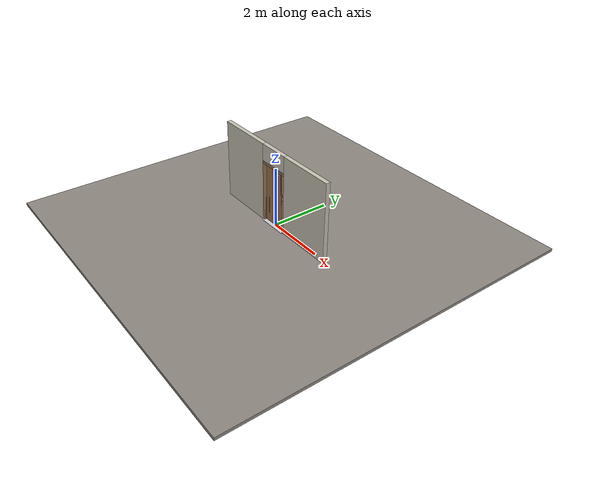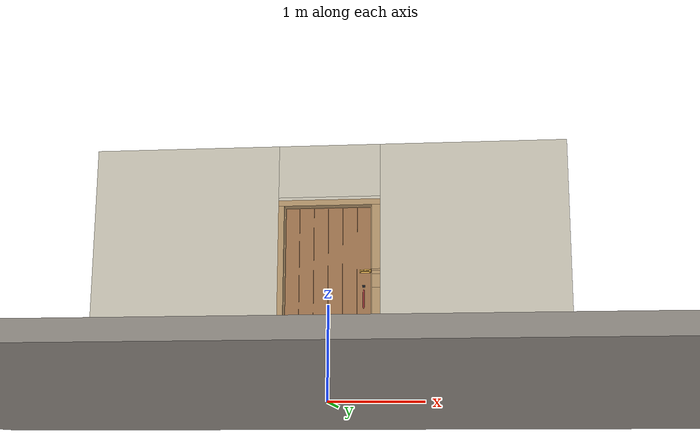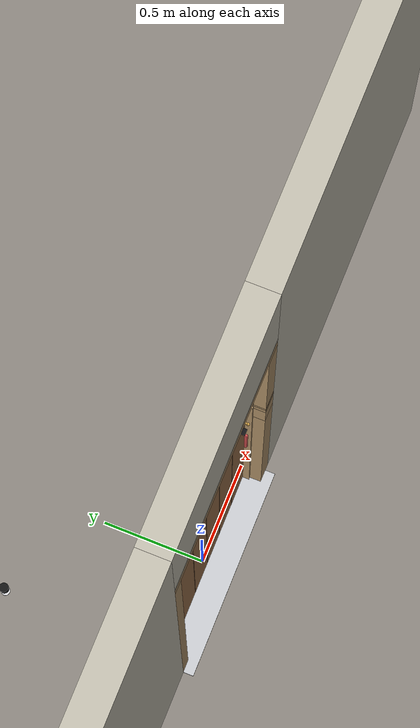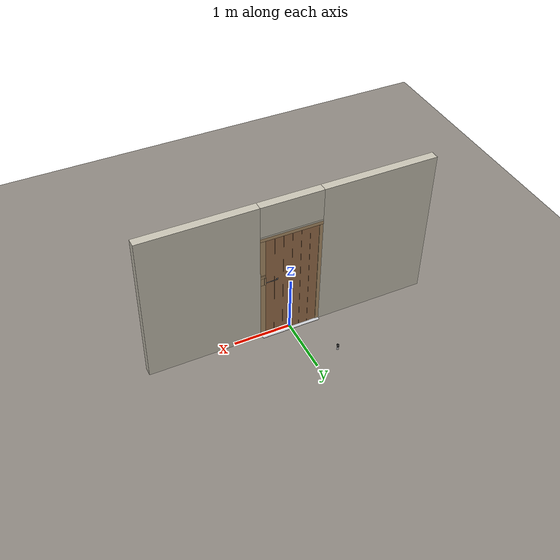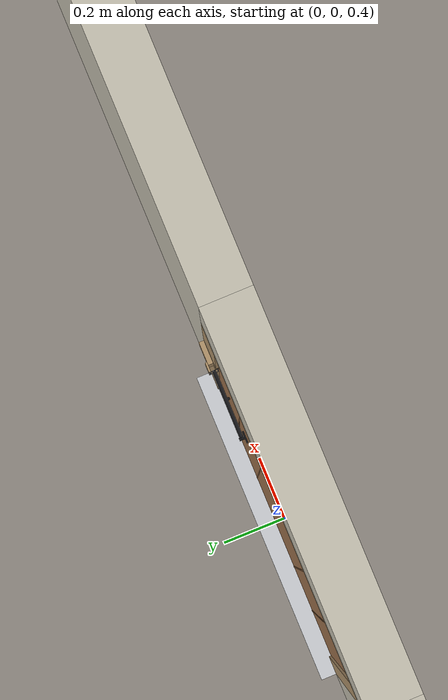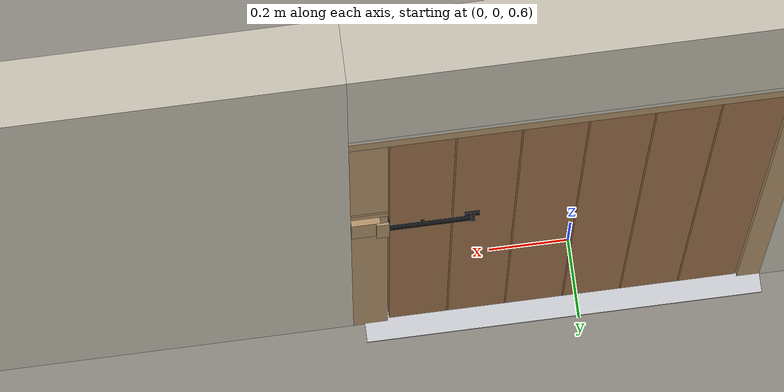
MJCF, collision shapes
<?xml version="1.0" ?>
<mujoco model="db0349_swing_single_full">
  <compiler angle="radian" meshdir="../../hardware" texturedir="../../textures" autolimits="true" inertiafromgeom="false"/>
  <option timestep="0.002" integrator="implicitfast" cone="elliptic" impratio="10" noslip_iterations="3">
    <flag multiccd="enable"/>
  </option>
  <size memory="16M"/>
  <default>
    <geom condim="4" solref="0.005 1" solimp="0.95 0.99 0.001"/>
    <joint solreflimit="0.005 1" solimplimit="0.95 0.99 0.001"/>
    <tendon solreflimit="0.005 1"/>
    <equality solref="0.002 1"/>
  </default>
  <visual>
    <headlight ambient="0.4 0.4 0.4" diffuse="0.7 0.7 0.7" specular="0.2 0.2 0.2"/>
    <quality shadowsize="4096"/>
    <map znear="0.01" zfar="60"/>
  </visual>
  <asset>
    <mesh name="hinge_18a63ca062" file="hinge_18a63ca062.obj"/>
    <mesh name="hinge_jamb_e6260b1afb" file="hinge_jamb_e6260b1afb.obj"/>
    <mesh name="thumb_latch_0073ea78ed" file="thumb_latch_0073ea78ed.obj"/>
    <material name="mat_floor" rgba="0.55 0.53 0.5 1" specular="0.2" shininess="0.15" reflectance="0"/>
    <material name="mat_wall" rgba="0.78 0.76 0.7 1" specular="0.2" shininess="0.1" reflectance="0"/>
    <material name="mat_leaf" rgba="0.62 0.45 0.3 1" specular="0.2" shininess="0.5" reflectance="0"/>
    <material name="mat_leaf_brace" rgba="0.558 0.405 0.27 1" specular="0.2" shininess="0.2" reflectance="0"/>
    <material name="mat_hinge" rgba="0.45 0.3 0.22 1" specular="0.5" shininess="0.1" reflectance="0.2"/>
    <material name="mat_op_wrought_iron" rgba="0.08 0.08 0.09 1" specular="0.56" shininess="0.25" reflectance="0.24"/>
    <material name="mat_op_brass" rgba="0.85 0.66 0.3 1" specular="0.8" shininess="0.75" reflectance="0.4"/>
    <material name="mat_frame" rgba="0.7 0.58 0.42 1" specular="0.2" shininess="0.5" reflectance="0"/>
    <material name="mat_threshold" rgba="0.8 0.81 0.83 1" specular="0.8" shininess="0.6" reflectance="0.4"/>
    <material name="mat_bumper_stop" rgba="0.08 0.08 0.08 1" specular="0.2" shininess="0.1" reflectance="0"/>
    <material name="mat_stop_base" rgba="0.9 0.9 0.92 1" specular="0.8" shininess="0.9" reflectance="0.4"/>
    <texture name="skybox" type="skybox" builtin="gradient" rgb1="0.6 0.7 0.85" rgb2="0.9 0.92 0.95" width="256" height="256"/>
  </asset>
  <worldbody>
    <light name="sun" pos="1.5 -2.5 4" dir="-0.3 0.5 -0.8" directional="true" diffuse="0.8 0.8 0.8" specular="0.3 0.3 0.3" castshadow="true"/>
    <light name="fill" pos="-1.5 2.5 3" dir="0.3 -0.5 -0.7" directional="true" diffuse="0.35 0.35 0.4" castshadow="false"/>
    <camera name="robot_view" pos="0 -2.582688 1.734312" xyaxes="1 0 0 0 0.26963 0.962964" fovy="52"/>
    <camera name="far_view" pos="0 2.501687 1.734312" xyaxes="-1 0 0 0 -0.26963 0.962964" fovy="52"/>
    <camera name="iso" pos="1.932062 -2.175938 2.141063" xyaxes="0.741536 0.670913 0 -0.242917 0.268487 0.932151" fovy="46"/>
    <camera name="detail_handle" pos="0.556 -0.86 1.33" xyaxes="0.97561 0.219512 0 -0.070934 0.315262 0.94635" fovy="38"/>
    <geom name="floor" type="box" size="6 6 0.05" pos="0 0 -0.05" material="mat_floor" group="0" contype="1" conaffinity="1" friction="0.8 0.005 0.0001" density="2400"/>
    <geom name="wall_left" type="box" size="0.9895 0.0725 1.35" pos="-1.5105 -0.0405 1.35" material="mat_wall" group="0" contype="1" conaffinity="1" friction="0.6 0.005 0.0001" density="800"/>
    <geom name="wall_right" type="box" size="0.9745 0.0725 1.35" pos="1.5255 -0.0405 1.35" material="mat_wall" group="0" contype="1" conaffinity="1" friction="0.6 0.005 0.0001" density="800"/>
    <geom name="wall_header" type="box" size="0.536 0.0725 0.2825" pos="0.015 -0.0405 2.4175" material="mat_wall" group="0" contype="1" conaffinity="1" friction="0.6 0.005 0.0001" density="800"/>
    <geom name="hinge_0_jamb" type="mesh" mesh="hinge_jamb_e6260b1afb" pos="-0.458 0.032 0.259" quat="0 1 0 0" material="mat_hinge" group="1" contype="0" conaffinity="0" density="7850"/>
    <geom name="hinge_1_jamb" type="mesh" mesh="hinge_jamb_e6260b1afb" pos="-0.458 0.032 1.025" quat="0 1 0 0" material="mat_hinge" group="1" contype="0" conaffinity="0" density="7850"/>
    <geom name="hinge_2_jamb" type="mesh" mesh="hinge_jamb_e6260b1afb" pos="-0.458 0.032 1.861" quat="0 1 0 0" material="mat_hinge" group="1" contype="0" conaffinity="0" density="7850"/>
    <geom name="leaf_latch_bar_keeper_b" type="box" size="0.015 0.0025 0.0005" pos="0.4605 0.037 1.1625" quat="-0.5 -0.5 0.5 0.5" material="mat_op_wrought_iron" group="1" contype="0" conaffinity="0" density="7800"/>
    <geom name="leaf_latch_bar_keeper_l" type="box" size="0.0025 0.07 0.0005" pos="0.4605 0.0495 1.235" quat="-0.5 -0.5 0.5 0.5" material="mat_op_wrought_iron" group="1" contype="0" conaffinity="0" density="7800"/>
    <geom name="leaf_latch_bar_keeper_t" type="box" size="0.015 0.0025 0.0005" pos="0.4605 0.037 1.3075" quat="-0.5 -0.5 0.5 0.5" material="mat_op_wrought_iron" group="1" contype="0" conaffinity="0" density="7800"/>
    <geom name="leaf_latch_bar_keeper_r" type="box" size="0.0025 0.07 0.0005" pos="0.4605 0.0245 1.235" quat="-0.5 -0.5 0.5 0.5" material="mat_op_wrought_iron" group="1" contype="0" conaffinity="0" density="7800"/>
    <geom name="leaf_aux_bolt_keeper_b" type="box" size="0.014 0.003 0.0005" pos="0.4605 -0.037 1.337" quat="-0.5 -0.5 0.5 0.5" material="mat_op_brass" group="1" contype="0" conaffinity="0" density="7800"/>
    <geom name="leaf_aux_bolt_keeper_l" type="box" size="0.003 0.01 0.0005" pos="0.4605 -0.026 1.35" quat="-0.5 -0.5 0.5 0.5" material="mat_op_brass" group="1" contype="0" conaffinity="0" density="7800"/>
    <geom name="leaf_aux_bolt_keeper_t" type="box" size="0.014 0.003 0.0005" pos="0.4605 -0.037 1.363" quat="-0.5 -0.5 0.5 0.5" material="mat_op_brass" group="1" contype="0" conaffinity="0" density="7800"/>
    <geom name="leaf_aux_bolt_keeper_r" type="box" size="0.003 0.01 0.0005" pos="0.4605 -0.048 1.35" quat="-0.5 -0.5 0.5 0.5" material="mat_op_brass" group="1" contype="0" conaffinity="0" density="7800"/>
    <geom name="jamb_hinge" type="box" size="0.03 0.0725 1.0225" pos="-0.491 -0.0405 1.0225" material="mat_frame" group="0" contype="1" conaffinity="1" friction="0.6 0.005 0.0001" density="750"/>
    <geom name="strike_1235_wall_n" type="box" size="0.045 0.07 0.07" pos="0.506 -0.043 1.235" material="mat_frame" group="0" contype="1" conaffinity="1" friction="0.6 0.005 0.0001" density="750"/>
    <geom name="strike_1235_wall_p" type="box" size="0.015 0.003 0.07" pos="0.476 0.05 1.235" material="mat_frame" group="0" contype="1" conaffinity="1" friction="0.6 0.005 0.0001" density="750"/>
    <geom name="strike_1235_back" type="box" size="0.035 0.01 0.07" pos="0.516 0.037 1.235" material="mat_frame" group="0" contype="1" conaffinity="1" friction="0.6 0.005 0.0001" density="750"/>
    <geom name="strike_1350_wall_n" type="box" size="0.045 0.034 0.01" pos="0.506 -0.079 1.35" material="mat_frame" group="0" contype="1" conaffinity="1" friction="0.6 0.005 0.0001" density="750"/>
    <geom name="strike_1350_wall_p" type="box" size="0.045 0.0305 0.01" pos="0.506 0.0015 1.35" material="mat_frame" group="0" contype="1" conaffinity="1" friction="0.6 0.005 0.0001" density="750"/>
    <geom name="strike_1350_back" type="box" size="0.024 0.008 0.01" pos="0.527 -0.037 1.35" material="mat_frame" group="0" contype="1" conaffinity="1" friction="0.6 0.005 0.0001" density="750"/>
    <geom name="jamb_strike_0" type="box" size="0.045 0.0725 0.5825" pos="0.506 -0.0405 0.5825" material="mat_frame" group="0" contype="1" conaffinity="1" friction="0.6 0.005 0.0001" density="750"/>
    <geom name="jamb_strike_1" type="box" size="0.045 0.0725 0.0175" pos="0.506 -0.0405 1.3225" material="mat_frame" group="0" contype="1" conaffinity="1" friction="0.6 0.005 0.0001" density="750"/>
    <geom name="jamb_strike_2" type="box" size="0.045 0.0725 0.3425" pos="0.506 -0.0405 1.7025" material="mat_frame" group="0" contype="1" conaffinity="1" friction="0.6 0.005 0.0001" density="750"/>
    <geom name="jamb_head" type="box" size="0.536 0.0725 0.03" pos="0.015 -0.0405 2.075" material="mat_frame" group="0" contype="1" conaffinity="1" friction="0.6 0.005 0.0001" density="750"/>
    <geom name="head_stud" type="box" size="0.536 0.0725 0.015" pos="0.015 -0.0405 2.12" material="mat_wall" group="0" contype="1" conaffinity="1" friction="0.6 0.005 0.0001" density="500"/>
    <geom name="stop_hinge" type="box" size="0.0055 0.016 1.0225" pos="-0.4555 -0.0415 1.0225" material="mat_frame" group="0" contype="1" conaffinity="1" friction="0.6 0.005 0.0001" density="750"/>
    <geom name="stop_strike" type="box" size="0.0055 0.016 0.664" pos="0.4555 -0.0415 0.664" material="mat_frame" group="0" contype="1" conaffinity="1" friction="0.6 0.005 0.0001" density="750"/>
    <geom name="stop_strike_1" type="box" size="0.0055 0.016 0.3365" pos="0.4555 -0.0415 1.7085" material="mat_frame" group="0" contype="1" conaffinity="1" friction="0.6 0.005 0.0001" density="750"/>
    <geom name="stop_head" type="box" size="0.461 0.016 0.0055" pos="0 -0.0415 2.0395" material="mat_frame" group="0" contype="1" conaffinity="1" friction="0.6 0.005 0.0001" density="750"/>
    <geom name="threshold" type="box" size="0.521 0.1225 0.004" pos="0 -0.0405 0.004" material="mat_threshold" group="0" contype="1" conaffinity="1" friction="0.6 0.005 0.0001" density="2700"/>
    <geom name="door_stop_base" type="cylinder" size="0.022 0.003" pos="-0.475 0.8089 0.003" material="mat_stop_base" group="0" contype="1" conaffinity="1" friction="0.6 0.005 0.0001" density="7850"/>
    <geom name="door_stop_post" type="cylinder" size="0.012 0.0245" pos="-0.475 0.8089 0.0305" material="mat_stop_base" group="0" contype="1" conaffinity="1" friction="0.6 0.005 0.0001" density="7850"/>
    <geom name="door_stop_bumper" type="cylinder" size="0.022 0.02" pos="-0.475 0.8089 0.075" material="mat_bumper_stop" group="0" contype="1" conaffinity="1" friction="0.6 0.005 0.0001" density="1100"/>
    <site name="approach_point" pos="0 -1.5 0" quat="1 0 0 0" size="0.05" rgba="0.2 0.9 0.2 0.5" group="4"/>
    <site name="goal_point" pos="0 1.5 0" quat="1 0 0 0" size="0.05" rgba="0.2 0.9 0.2 0.5" group="4"/>
    <site name="door_plane_center" pos="0 0 1.0225" quat="1 0 0 0" size="0.02" rgba="0.2 0.9 0.2 0.5" group="4"/>
    <body name="leaf" pos="-0.461 0 0">
      <inertial pos="0.46018 -0.000364 1.026305" mass="66.040744" quat="0.501334 0.499152 -0.500882 0.498627" diaginertia="4.787250534 22.49156911 27.247308361"/>
      <joint name="leaf_hinge" type="hinge" axis="0 0 1" pos="0.003 0.032 0" limited="true" range="0 1.570796" damping="0.30611" frictionloss="12.216597" armature="0.02"/>
      <geom name="leaf_slab" type="box" size="0.457 0.025 1.016" pos="0.46 0 1.025" material="mat_leaf" group="0" contype="1" conaffinity="1" friction="0.4 0.005 0.0001" density="1"/>
      <geom name="leaf_plank_gap_1" type="box" size="0.002 0.026 1.006" pos="0.155333 0 1.025" material="mat_leaf_brace" group="1" contype="0" conaffinity="0" density="1"/>
      <geom name="leaf_plank_gap_2" type="box" size="0.002 0.026 1.006" pos="0.307667 0 1.025" material="mat_leaf_brace" group="1" contype="0" conaffinity="0" density="1"/>
      <geom name="leaf_plank_gap_3" type="box" size="0.002 0.026 1.006" pos="0.46 0 1.025" material="mat_leaf_brace" group="1" contype="0" conaffinity="0" density="1"/>
      <geom name="leaf_plank_gap_4" type="box" size="0.002 0.026 1.006" pos="0.612333 0 1.025" material="mat_leaf_brace" group="1" contype="0" conaffinity="0" density="1"/>
      <geom name="leaf_plank_gap_5" type="box" size="0.002 0.026 1.006" pos="0.764667 0 1.025" material="mat_leaf_brace" group="1" contype="0" conaffinity="0" density="1"/>
      <geom name="hinge_0" type="mesh" mesh="hinge_18a63ca062" pos="0.003 0.032 0.259" quat="0 1 0 0" material="mat_hinge" group="1" contype="0" conaffinity="0" density="7850"/>
      <geom name="hinge_1" type="mesh" mesh="hinge_18a63ca062" pos="0.003 0.032 1.025" quat="0 1 0 0" material="mat_hinge" group="1" contype="0" conaffinity="0" density="7850"/>
      <geom name="hinge_2" type="mesh" mesh="hinge_18a63ca062" pos="0.003 0.032 1.861" quat="0 1 0 0" material="mat_hinge" group="1" contype="0" conaffinity="0" density="7850"/>
      <geom name="leaf_suffolk_grip" type="mesh" mesh="thumb_latch_0073ea78ed" pos="0.837 -0.025 1.05" quat="0.707107 0.707107 0 0" material="mat_op_wrought_iron" group="1" contype="0" conaffinity="0" density="7000"/>
      <geom name="leaf_suffolk_grip_col" type="capsule" size="0.008 0.09" pos="0.837 -0.06 1.05" material="mat_op_wrought_iron" group="3" contype="1" conaffinity="1" rgba="0.8 0.3 0.3 0.25" friction="0.7 0.01 0.0001" density="7000"/>
      <geom name="leaf_latch_bar_pivot" type="box" size="0.018 0.002 0.018" pos="0.717 0.027 1.19" material="mat_op_wrought_iron" group="1" contype="0" conaffinity="0" density="7000"/>
      <geom name="leaf_latch_bar_pin" type="cylinder" size="0.005 0.01" pos="0.717 0.035 1.19" quat="0.707107 -0.707107 0 0" material="mat_op_wrought_iron" group="1" contype="0" conaffinity="0" density="7000"/>
      <geom name="leaf_aux_bolt_plate" type="box" size="0.0595 0.019 0.001" pos="0.8495 -0.026 1.35" quat="0.707107 0.707107 0 0" material="mat_op_brass" group="1" contype="0" conaffinity="0" density="7800"/>
      <geom name="leaf_aux_bolt_guide_0_leg_n" type="box" size="0.006 0.002 0.0125" pos="0.901 -0.0375 1.339" quat="0.707107 0.707107 0 0" material="mat_op_brass" group="1" contype="0" conaffinity="0" density="7800"/>
      <geom name="leaf_aux_bolt_guide_0_leg_p" type="box" size="0.006 0.002 0.0125" pos="0.901 -0.0375 1.361" quat="0.707107 0.707107 0 0" material="mat_op_brass" group="1" contype="0" conaffinity="0" density="7800"/>
      <geom name="leaf_aux_bolt_guide_0_bridge" type="box" size="0.006 0.013 0.002" pos="0.901 -0.048 1.35" quat="0.707107 0.707107 0 0" material="mat_op_brass" group="1" contype="0" conaffinity="0" density="7800"/>
      <geom name="leaf_aux_bolt_guide_1_leg_n" type="box" size="0.006 0.002 0.0125" pos="0.8 -0.0375 1.339" quat="0.707107 0.707107 0 0" material="mat_op_brass" group="1" contype="0" conaffinity="0" density="7800"/>
      <geom name="leaf_aux_bolt_guide_1_leg_p" type="box" size="0.006 0.002 0.0125" pos="0.8 -0.0375 1.361" quat="0.707107 0.707107 0 0" material="mat_op_brass" group="1" contype="0" conaffinity="0" density="7800"/>
      <geom name="leaf_aux_bolt_guide_1_bridge" type="box" size="0.006 0.013 0.002" pos="0.8 -0.048 1.35" quat="0.707107 0.707107 0 0" material="mat_op_brass" group="1" contype="0" conaffinity="0" density="7800"/>
      <site name="leaf_grip_n" pos="0.837 -0.06 1.05" quat="1 0 0 0" size="0.012" rgba="0.2 0.9 0.2 0.5" group="4"/>
      <site name="leaf_edge_mid" pos="0.917 0 1.016" quat="1 0 0 0" size="0.02" rgba="0.2 0.9 0.2 0.5" group="4"/>
      <body name="leaf_thumb" pos="0.837 -0.025 1.195">
        <inertial pos="0 -0.00137 -0.006032" mass="0.131152" quat="0.700107 -0.09925 -0.09925 -0.700107" diaginertia="0.000010933 0.0000597 0.000061045"/>
        <joint name="leaf_thumb_hinge" type="hinge" axis="1 0 0" limited="true" range="0 0.3" damping="0.15542" frictionloss="0.032" stiffness="0.6" springref="-0.5" armature="0.01"/>
        <geom name="leaf_thumb_geom" type="box" size="0.015 0.014 0.003" pos="0 -0.02 0" material="mat_op_wrought_iron" group="0" contype="1" conaffinity="1" friction="0.6 0.005 0.0001" density="7000"/>
        <geom name="leaf_thumb_boss" type="box" size="0.012 0.008 0.013" pos="0 -0.004 -0.005" material="mat_op_wrought_iron" group="1" contype="0" conaffinity="0" density="7000"/>
        <geom name="leaf_thumb_lifter" type="box" size="0.004 0.029 0.004" pos="0 0.031 -0.017" material="mat_op_wrought_iron" group="1" contype="0" conaffinity="0" density="7000"/>
        <site name="leaf_thumb_push" pos="0 -0.024 0.005" quat="1 0 0 0" size="0.01" rgba="0.2 0.9 0.2 0.5" group="4"/>
      </body>
      <body name="leaf_latch_bar" pos="0.717 0.037 1.19">
        <inertial pos="0.106 0 0" mass="0.25" quat="0 0 0.707107 0.707107" diaginertia="0.000004465 0.000904065 0.000904065"/>
        <joint name="leaf_latch_bar_hinge" type="hinge" axis="0 -1 0" limited="true" range="0 0.6" damping="0.01" frictionloss="0.01" armature="0.005"/>
        <geom name="leaf_latch_bar_geom" type="capsule" size="0.006 0.1" pos="0.106 0 0" quat="0.707107 0 0.707107 0" material="mat_op_wrought_iron" group="0" contype="1" conaffinity="1" friction="0.6 0.005 0.0001" density="7850"/>
      </body>
      <body name="leaf_aux_bolt" pos="0.917 -0.037 1.35">
        <inertial pos="-0.068563 -0.00492 0" mass="0.111784" quat="0.998595 0 0 0.05299" diaginertia="0.000012212 0.000071985 0.000082309"/>
        <joint name="leaf_aux_bolt_slide" type="slide" axis="-1 0 0" limited="true" range="0 0.045" damping="1" frictionloss="1" armature="0.1" ref="0.045"/>
        <geom name="leaf_aux_bolt_rod" type="capsule" size="0.006 0.044" pos="-0.065 0 0" quat="0.707107 0 0.707107 0" material="mat_op_brass" group="0" contype="1" conaffinity="1" friction="0.6 0.005 0.0001" density="7850"/>
        <geom name="leaf_aux_bolt_knob" type="capsule" size="0.005 0.01" pos="-0.08 -0.015 0" quat="0.707107 0.707107 0 0" material="mat_op_brass" group="0" contype="1" conaffinity="1" friction="0.6 0.005 0.0001" density="7850"/>
        <geom name="leaf_aux_bolt_knob_end" type="sphere" size="0.00675" pos="-0.08 -0.03 0" material="mat_op_brass" group="1" contype="0" conaffinity="0" density="7850"/>
        <site name="leaf_aux_bolt_grip" pos="-0.08 -0.034 0" quat="1 0 0 0" size="0.012" rgba="0.2 0.9 0.2 0.5" group="4"/>
      </body>
    </body>
  </worldbody>
  <equality>
    <joint name="leaf_thumb_couple" joint1="leaf_latch_bar_hinge" joint2="leaf_thumb_hinge" polycoef="0 2 0 0 0" active="true"/>
  </equality>
  <sensor>
    <jointpos name="leaf_hinge_pos" joint="leaf_hinge"/>
    <jointvel name="leaf_hinge_vel" joint="leaf_hinge"/>
    <jointpos name="leaf_thumb_hinge_pos" joint="leaf_thumb_hinge"/>
    <jointvel name="leaf_thumb_hinge_vel" joint="leaf_thumb_hinge"/>
    <jointpos name="leaf_latch_bar_hinge_pos" joint="leaf_latch_bar_hinge"/>
    <jointvel name="leaf_latch_bar_hinge_vel" joint="leaf_latch_bar_hinge"/>
    <jointpos name="leaf_aux_bolt_slide_pos" joint="leaf_aux_bolt_slide"/>
    <jointvel name="leaf_aux_bolt_slide_vel" joint="leaf_aux_bolt_slide"/>
  </sensor>
</mujoco>
